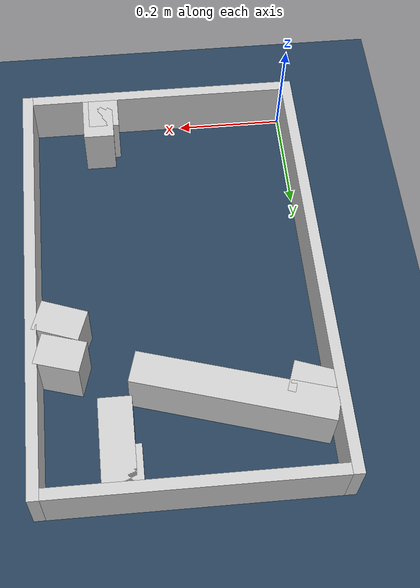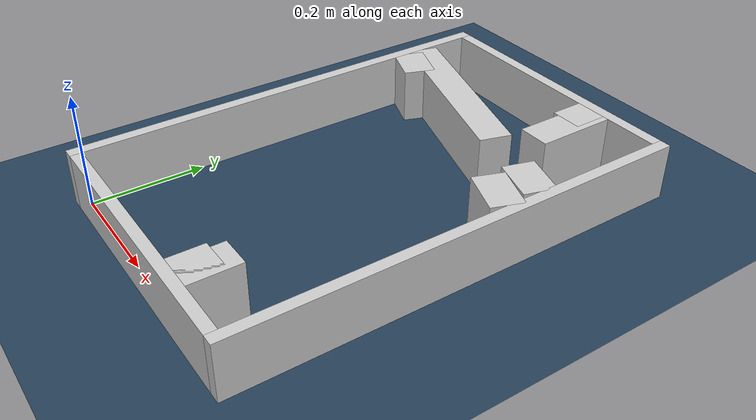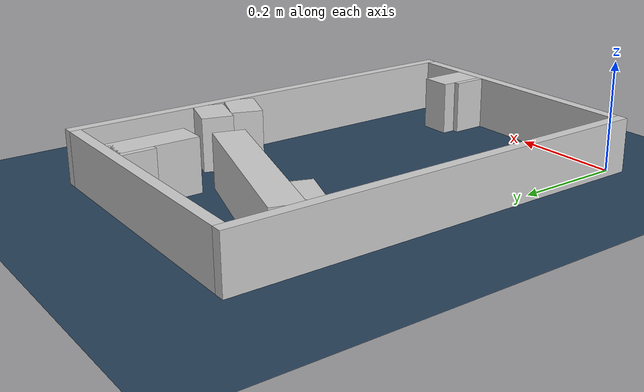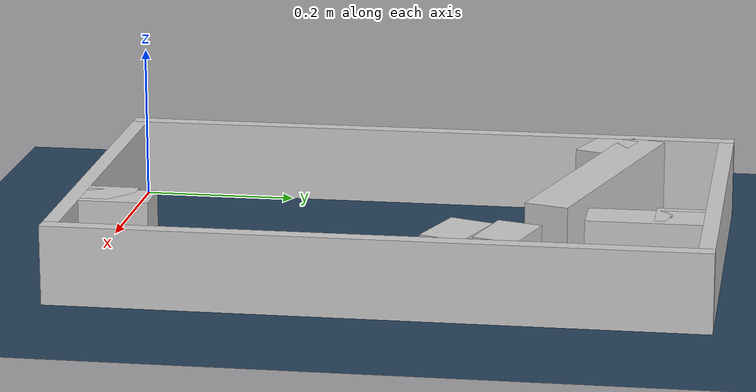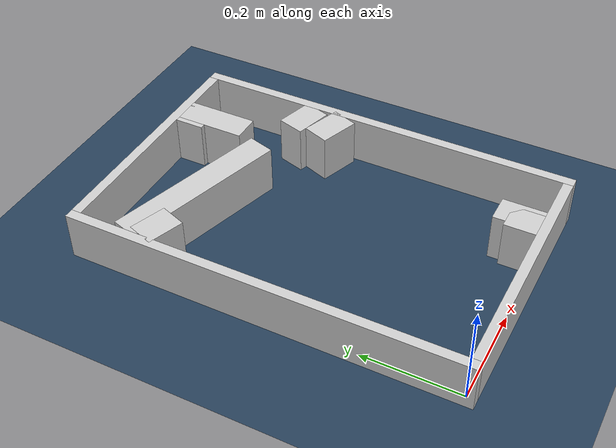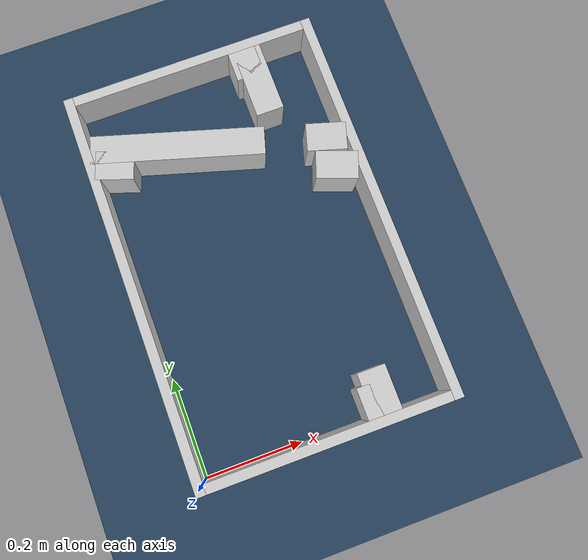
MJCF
<?xml version="1.0" ?>
<mujoco model="generated_real_template">
  <compiler angle="degree"/>
  <option timestep="0.002" integrator="implicitfast" iterations="100" cone="elliptic"/>
  <default>
    <geom density="1"/>
  </default>
  <asset>
    <texture builtin="gradient" height="3072" rgb1="0.3 0.5 0.7" rgb2="0 0 0" type="skybox" width="512"/>
    <texture builtin="checker" height="300" mark="edge" markrgb="0.8 0.8 0.8" name="groundplane" rgb1="0.2 0.3 0.4" rgb2="0.1 0.2 0.3" type="2d" width="300"/>
    <material name="groundplane" reflectance="0.2" texrepeat="5 5" texture="groundplane" texuniform="true"/>
  </asset>
  <worldbody>
    <light dir="0 0 -1" directional="true" pos="0 0 1.5"/>
    <geom name="floor" type="plane" condim="4" friction="0.5 0.005 0.001" material="groundplane" size="0 0 0.05"/>
    <body name="walls">
      <geom name="wall_boundary_left" type="box" condim="4" friction="1.0 0.005 0.0001" rgba="0.8 0.8 0.8 1" pos="-0.010000 0.387500 0.050000" euler="0 0 0.000000" size="0.010000 0.407500 0.050000"/>
      <geom name="wall_boundary_right" type="box" condim="4" friction="1.0 0.005 0.0001" rgba="0.8 0.8 0.8 1" pos="0.500000 0.387500 0.050000" euler="0 0 0.000000" size="0.010000 0.407500 0.050000"/>
      <geom name="wall_boundary_bottom" type="box" condim="4" friction="1.0 0.005 0.0001" rgba="0.8 0.8 0.8 1" pos="0.245000 -0.010000 0.050000" euler="0 0 0.000000" size="0.245000 0.010000 0.050000"/>
      <geom name="wall_boundary_top" type="box" condim="4" friction="1.0 0.005 0.0001" rgba="0.8 0.8 0.8 1" pos="0.245000 0.785000 0.050000" euler="0 0 0.000000" size="0.245000 0.010000 0.050000"/>
      <geom name="wall_inner_1_1" type="box" condim="4" friction="1.0 0.005 0.0001" rgba="0.8 0.8 0.8 1" pos="0.450338 0.481825 0.050000" euler="0 0 160.263408" size="0.042137 0.028500 0.050000"/>
      <geom name="wall_inner_1_2" type="box" condim="4" friction="1.0 0.005 0.0001" rgba="0.8 0.8 0.8 1" pos="0.036033 0.630466 0.050000" euler="0 0 160.263408" size="0.038282 0.028500 0.050000"/>
      <geom name="wall_inner_2_1" type="box" condim="4" friction="1.0 0.005 0.0001" rgba="0.8 0.8 0.8 1" pos="0.451503 0.543491 0.050000" euler="0 0 163.547579" size="0.040141 0.028500 0.050000"/>
      <geom name="wall_inner_2_2" type="box" condim="4" friction="1.0 0.005 0.0001" rgba="0.8 0.8 0.8 1" pos="0.166742 0.627584 0.050000" euler="0 0 163.547579" size="0.173860 0.028500 0.050000"/>
      <geom name="wall_inner_3_1" type="box" condim="4" friction="1.0 0.005 0.0001" rgba="0.8 0.8 0.8 1" pos="0.364885 0.044209 0.050000" euler="0 0 90.000000" size="0.044209 0.028500 0.050000"/>
      <geom name="wall_inner_3_2" type="box" condim="4" friction="1.0 0.005 0.0001" rgba="0.8 0.8 0.8 1" pos="0.364885 0.703176 0.050000" euler="0 0 90.000000" size="0.071824 0.028500 0.050000"/>
      <geom name="wall_inner_4_1" type="box" condim="4" friction="1.0 0.005 0.0001" rgba="0.8 0.8 0.8 1" pos="0.353895 0.031596 0.050000" euler="0 0 90.000000" size="0.031596 0.028500 0.050000"/>
      <geom name="wall_inner_4_2" type="box" condim="4" friction="1.0 0.005 0.0001" rgba="0.8 0.8 0.8 1" pos="0.353895 0.744987 0.050000" euler="0 0 90.000000" size="0.030013 0.028500 0.050000"/>
    </body>
  </worldbody>
</mujoco>
